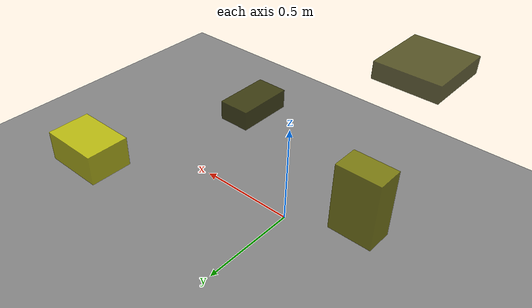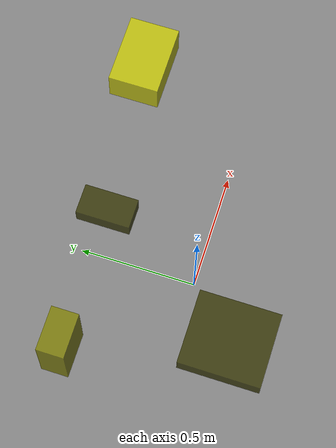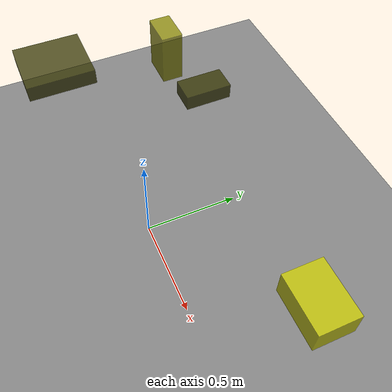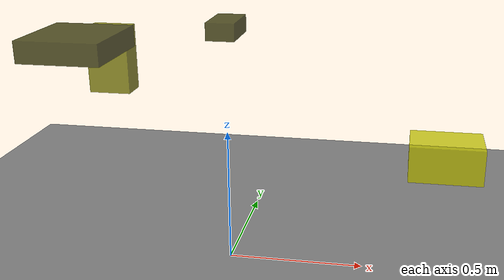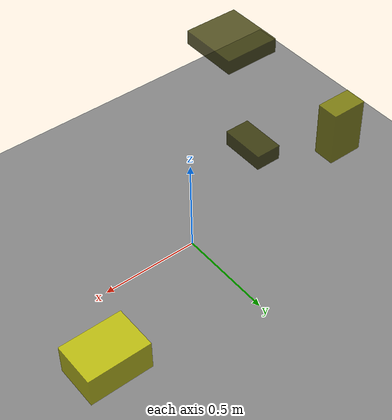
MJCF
<?xml version="1.0"?>
<mujoco model="obstacle_scene">
  <compiler angle="radian" coordinate="local"/>
  <option timestep="0.001" gravity="0 0 -9.81"/>

  <asset>
    <material name="obstacle_mat" rgba="0.8 0.8 0.0 0.8"/>
    <material name="ground_mat" rgba="0.5 0.5 0.5 1"/>
  </asset>

  <worldbody>
    <!-- Ground plane -->
    <geom name="ground" type="plane" size="3 3 0.1" material="ground_mat"/>

    <!-- Obstacles -->
    <body name="obstacle_0" pos="-0.078506 0.328663 0.816357">
      <geom name="obs_0" type="box" size="0.056489 0.101875 0.034619" rgba="0.2 0.2 0.0 0.8"/>
    </body>
    <body name="obstacle_1" pos="-0.567862 0.350882 0.668731">
      <geom name="obs_1" type="box" size="0.084681 0.052440 0.133951" rgba="0.5 0.5 0.0 0.8"/>
    </body>
    <body name="obstacle_2" pos="0.806096 0.481608 0.269468">
      <geom name="obs_2" type="box" size="0.151453 0.107834 0.076139" rgba="0.8 0.8 0.0 0.8"/>
    </body>
    <body name="obstacle_3" pos="-0.430480 -0.240112 0.862846">
      <geom name="obs_3" type="box" size="0.136925 0.149902 0.036127" rgba="0.2 0.2 0.0 0.8"/>
    </body>
  </worldbody>
</mujoco>
